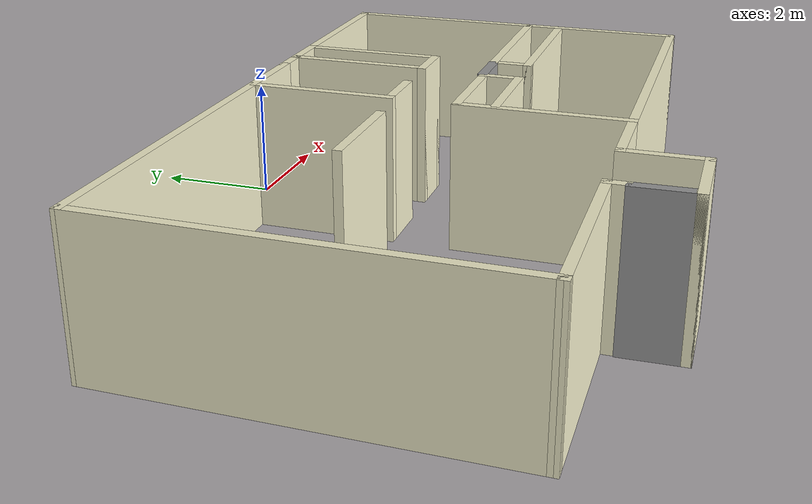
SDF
<?xml version='1.0'?>
<sdf version='1.6'>
  <model name='house'>
    <pose frame=''>-1.46609 -4.03759 0 0 -0 0</pose>
    <link name='Door_0'>
      <collision name='Door_0_Collision'>
        <geometry>
          <box>
            <size>0.9 0.17 2.5</size>
          </box>
        </geometry>
        <pose frame=''>0 0 1.25 0 -0 0</pose>
      </collision>
      <visual name='Door_0_Visual'>
        <pose frame=''>0 0 1.25 0 -0 0</pose>
        <geometry>
          <box>
            <size>0.9 0.17 2.5</size>
          </box>
        </geometry>
        <material>
          <script>
            <uri>file://media/materials/scripts/gazebo.material</uri>
            <name>Gazebo/Grey</name>
          </script>
        </material>
      </visual>
      <pose frame=''>-2.53496 -3.43764 0 0 -0 1.59446</pose>
    </link>
    <link name='Door_1'>
      <collision name='Door_1_Collision'>
        <geometry>
          <box>
            <size>0.85 0.17 2.5</size>
          </box>
        </geometry>
        <pose frame=''>0 0 1.25 0 -0 0</pose>
      </collision>
      <visual name='Door_1_Visual'>
        <pose frame=''>0 0 1.25 0 -0 0</pose>
        <geometry>
          <box>
            <size>0.85 0.17 2.5</size>
          </box>
        </geometry>
        <material>
          <script>
            <uri>file://media/materials/scripts/gazebo.material</uri>
            <name>Gazebo/Grey</name>
          </script>
        </material>
      </visual>
      <pose frame=''>2.18886 0.032322 0 0 -0 0</pose>
    </link>
    <link name='Wall_10'>
      <collision name='Wall_10_Collision'>
        <geometry>
          <box>
            <size>3.063 0.15 2.5</size>
          </box>
        </geometry>
        <pose frame=''>0 0 1.25 0 -0 0</pose>
      </collision>
      <visual name='Wall_10_Visual'>
        <pose frame=''>0 0 1.25 0 -0 0</pose>
        <geometry>
          <box>
            <size>3.063 0.15 2.5</size>
          </box>
        </geometry>
        <material>
          <script>
            <uri>file://media/materials/scripts/gazebo.material</uri>
            <name>Gazebo/Grey</name>
          </script>
          <ambient>0.956863 0.941176 0.8 1</ambient>
        </material>
        <meta>
          <layer>0</layer>
        </meta>
      </visual>
      <pose frame=''>-3.99041 -2.74041 0 0 -0 3.14159</pose>
    </link>
    <link name='Wall_12'>
      <collision name='Wall_12_Collision'>
        <geometry>
          <box>
            <size>6.4 0.15 2.5</size>
          </box>
        </geometry>
        <pose frame=''>0 0 1.25 0 -0 0</pose>
      </collision>
      <visual name='Wall_12_Visual'>
        <pose frame=''>0 0 1.25 0 -0 0</pose>
        <geometry>
          <box>
            <size>6.4 0.15 2.5</size>
          </box>
        </geometry>
        <material>
          <script>
            <uri>file://media/materials/scripts/gazebo.material</uri>
            <name>Gazebo/Grey</name>
          </script>
          <ambient>0.956863 0.941176 0.8 1</ambient>
        </material>
        <meta>
          <layer>0</layer>
        </meta>
      </visual>
      <pose frame=''>-5.43941 0.384587 0 0 -0 1.5684</pose>
    </link>
    <link name='Wall_14'>
      <collision name='Wall_14_Collision'>
        <geometry>
          <box>
            <size>5.649 0.15 2.5</size>
          </box>
        </geometry>
        <pose frame=''>0 0 1.25 0 -0 0</pose>
      </collision>
      <visual name='Wall_14_Visual'>
        <pose frame=''>0 0 1.25 0 -0 0</pose>
        <geometry>
          <box>
            <size>5.649 0.15 2.5</size>
          </box>
        </geometry>
        <material>
          <script>
            <uri>file://media/materials/scripts/gazebo.material</uri>
            <name>Gazebo/Grey</name>
          </script>
          <ambient>0.956863 0.941176 0.8 1</ambient>
        </material>
        <meta>
          <layer>0</layer>
        </meta>
      </visual>
      <pose frame=''>-2.68241 3.50959 0 0 -0 0</pose>
    </link>
    <link name='Wall_18'>
      <collision name='Wall_18_Collision'>
        <geometry>
          <box>
            <size>2.53945 0.15 2.5</size>
          </box>
        </geometry>
        <pose frame=''>0 0 1.25 0 -0 0</pose>
      </collision>
      <visual name='Wall_18_Visual'>
        <pose frame=''>0 0 1.25 0 -0 0</pose>
        <geometry>
          <box>
            <size>2.53945 0.15 2.5</size>
          </box>
        </geometry>
        <material>
          <script>
            <uri>file://media/materials/scripts/gazebo.material</uri>
            <name>Gazebo/Grey</name>
          </script>
          <ambient>0.956863 0.941176 0.8 1</ambient>
        </material>
        <meta>
          <layer>0</layer>
        </meta>
      </visual>
      <pose frame=''>0.06709 2.31509 0 0 -0 -1.5708</pose>
    </link>
    <link name='Wall_2'>
      <collision name='Wall_2_Collision'>
        <geometry>
          <box>
            <size>1.397 0.15 2.5</size>
          </box>
        </geometry>
        <pose frame=''>0 0 1.25 0 -0 0</pose>
      </collision>
      <visual name='Wall_2_Visual'>
        <pose frame=''>0 0 1.25 0 -0 0</pose>
        <geometry>
          <box>
            <size>1.397 0.15 2.5</size>
          </box>
        </geometry>
        <material>
          <script>
            <uri>file://media/materials/scripts/gazebo.material</uri>
            <name>Gazebo/Grey</name>
          </script>
          <ambient>0.956863 0.941176 0.8 1</ambient>
        </material>
        <meta>
          <layer>0</layer>
        </meta>
      </visual>
      <pose frame=''>-1.91041 -3.96241 0 0 -0 0</pose>
    </link>
    <link name='Wall_22'>
      <collision name='Wall_22_Collision'>
        <geometry>
          <box>
            <size>2.896 0.15 2.5</size>
          </box>
        </geometry>
        <pose frame=''>0 0 1.25 0 -0 0</pose>
      </collision>
      <visual name='Wall_22_Visual'>
        <pose frame=''>0 0 1.25 0 -0 0</pose>
        <geometry>
          <box>
            <size>2.896 0.15 2.5</size>
          </box>
        </geometry>
        <material>
          <script>
            <uri>file://media/materials/scripts/gazebo.material</uri>
            <name>Gazebo/Grey</name>
          </script>
          <ambient>0.956863 0.941176 0.8 1</ambient>
        </material>
        <meta>
          <layer>0</layer>
        </meta>
      </visual>
      <pose frame=''>0.06709 -1.36741 0 0 -0 1.5708</pose>
    </link>
    <link name='Wall_24'>
      <collision name='Wall_24_Collision'>
        <geometry>
          <box>
            <size>1.86 0.15 2.5</size>
          </box>
        </geometry>
        <pose frame=''>0 0 1.25 0 -0 0</pose>
      </collision>
      <visual name='Wall_24_Visual'>
        <pose frame=''>0 0 1.25 0 -0 0</pose>
        <geometry>
          <box>
            <size>1.86 0.15 2.5</size>
          </box>
        </geometry>
        <material>
          <script>
            <uri>file://media/materials/scripts/gazebo.material</uri>
            <name>Gazebo/Grey</name>
          </script>
          <ambient>0.956863 0.941176 0.8 1</ambient>
        </material>
        <meta>
          <layer>0</layer>
        </meta>
      </visual>
      <pose frame=''>-1.58791 1.00459 0 0 -0 3.14159</pose>
    </link>
    <link name='Wall_26'>
      <collision name='Wall_26_Collision'>
        <geometry>
          <box>
            <size>1.43 0.15 2.5</size>
          </box>
        </geometry>
        <pose frame=''>0 0 1.25 0 -0 0</pose>
      </collision>
      <visual name='Wall_26_Visual'>
        <pose frame=''>0 0 1.25 0 -0 0</pose>
        <geometry>
          <box>
            <size>1.43 0.15 2.5</size>
          </box>
        </geometry>
        <material>
          <script>
            <uri>file://media/materials/scripts/gazebo.material</uri>
            <name>Gazebo/Grey</name>
          </script>
          <ambient>0.956863 0.941176 0.8 1</ambient>
        </material>
        <meta>
          <layer>0</layer>
        </meta>
      </visual>
      <pose frame=''>0.70709 3.50959 0 0 -0 0</pose>
    </link>
    <link name='Wall_29'>
      <collision name='Wall_29_Collision'>
        <geometry>
          <box>
            <size>1.828 0.15 2.5</size>
          </box>
        </geometry>
        <pose frame=''>0 0 1.25 0 -0 0</pose>
      </collision>
      <visual name='Wall_29_Visual'>
        <pose frame=''>0 0 1.25 0 -0 0</pose>
        <geometry>
          <box>
            <size>1.828 0.15 2.5</size>
          </box>
        </geometry>
        <material>
          <script>
            <uri>file://media/materials/scripts/gazebo.material</uri>
            <name>Gazebo/Grey</name>
          </script>
          <ambient>0.956863 0.941176 0.8 1</ambient>
        </material>
        <meta>
          <layer>0</layer>
        </meta>
      </visual>
      <pose frame=''>0.90609 0.005587 0 0 -0 0</pose>
    </link>
    <link name='Wall_39'>
      <collision name='Wall_39_Collision'>
        <geometry>
          <box>
            <size>2.997 0.15 2.5</size>
          </box>
        </geometry>
        <pose frame=''>0 0 1.25 0 -0 0</pose>
      </collision>
      <visual name='Wall_39_Visual'>
        <pose frame=''>0 0 1.25 0 -0 0</pose>
        <geometry>
          <box>
            <size>2.997 0.15 2.5</size>
          </box>
        </geometry>
        <material>
          <script>
            <uri>file://media/materials/scripts/gazebo.material</uri>
            <name>Gazebo/Grey</name>
          </script>
          <ambient>0.956863 0.941176 0.8 1</ambient>
        </material>
        <meta>
          <layer>0</layer>
        </meta>
      </visual>
      <pose frame=''>4.02059 0.034587 0 0 -0 3.14159</pose>
    </link>
    <link name='Wall_4'>
      <collision name='Wall_4_Collision'>
        <geometry>
          <box>
            <size>1.37235 0.15 2.5</size>
          </box>
        </geometry>
        <pose frame=''>0 0 1.25 0 -0 0</pose>
      </collision>
      <visual name='Wall_4_Visual'>
        <pose frame=''>0 0 1.25 0 -0 0</pose>
        <geometry>
          <box>
            <size>1.37235 0.15 2.5</size>
          </box>
        </geometry>
        <material>
          <script>
            <uri>file://media/materials/scripts/gazebo.material</uri>
            <name>Gazebo/Grey</name>
          </script>
          <ambient>0.956863 0.941176 0.8 1</ambient>
        </material>
        <meta>
          <layer>0</layer>
        </meta>
      </visual>
      <pose frame=''>-1.28691 -3.35141 0 0 -0 1.5708</pose>
    </link>
    <link name='Wall_6'>
      <collision name='Wall_6_Collision'>
        <geometry>
          <box>
            <size>1.504 0.15 2.5</size>
          </box>
        </geometry>
        <pose frame=''>0 0 1.25 0 -0 0</pose>
      </collision>
      <visual name='Wall_6_Visual'>
        <pose frame=''>0 0 1.25 0 -0 0</pose>
        <geometry>
          <box>
            <size>1.504 0.15 2.5</size>
          </box>
        </geometry>
        <material>
          <script>
            <uri>file://media/materials/scripts/gazebo.material</uri>
            <name>Gazebo/Grey</name>
          </script>
          <ambient>0.956863 0.941176 0.8 1</ambient>
        </material>
        <meta>
          <layer>0</layer>
        </meta>
      </visual>
      <pose frame=''>-0.60991 -2.74041 0 0 -0 0</pose>
    </link>
    <link name='Wall_64'>
      <collision name='Wall_64_Collision'>
        <geometry>
          <box>
            <size>1.041 0.15 2.5</size>
          </box>
        </geometry>
        <pose frame=''>0 0 1.25 0 -0 0</pose>
      </collision>
      <visual name='Wall_64_Visual'>
        <pose frame=''>0 0 1.25 0 -0 0</pose>
        <geometry>
          <box>
            <size>1.041 0.15 2.5</size>
          </box>
        </geometry>
        <material>
          <script>
            <uri>file://media/materials/scripts/gazebo.material</uri>
            <name>Gazebo/Grey</name>
          </script>
          <ambient>0.956863 0.941176 0.8 1</ambient>
        </material>
        <meta>
          <layer>0</layer>
        </meta>
      </visual>
      <pose frame=''>0.51259 1.12059 0 0 -0 0</pose>
    </link>
    <link name='Wall_66'>
      <collision name='Wall_66_Collision'>
        <geometry>
          <box>
            <size>0.88 0.15 2.5</size>
          </box>
        </geometry>
        <pose frame=''>0 0 1.25 0 -0 0</pose>
      </collision>
      <visual name='Wall_66_Visual'>
        <pose frame=''>0 0 1.25 0 -0 0</pose>
        <geometry>
          <box>
            <size>0.88 0.15 2.5</size>
          </box>
        </geometry>
        <material>
          <script>
            <uri>file://media/materials/scripts/gazebo.material</uri>
            <name>Gazebo/Grey</name>
          </script>
          <ambient>0.956863 0.941176 0.8 1</ambient>
        </material>
        <meta>
          <layer>0</layer>
        </meta>
      </visual>
      <pose frame=''>2.23209 1.12859 0 0 -0 0</pose>
    </link>
    <link name='Wall_68'>
      <collision name='Wall_68_Collision'>
        <geometry>
          <box>
            <size>2.531 0.15 2.5</size>
          </box>
        </geometry>
        <pose frame=''>0 0 1.25 0 -0 0</pose>
      </collision>
      <visual name='Wall_68_Visual'>
        <pose frame=''>0 0 1.25 0 -0 0</pose>
        <geometry>
          <box>
            <size>2.531 0.15 2.5</size>
          </box>
        </geometry>
        <material>
          <script>
            <uri>file://media/materials/scripts/gazebo.material</uri>
            <name>Gazebo/Grey</name>
          </script>
          <ambient>0.956863 0.941176 0.8 1</ambient>
        </material>
        <meta>
          <layer>0</layer>
        </meta>
      </visual>
      <pose frame=''>1.86709 2.31909 0 0 -0 1.5708</pose>
    </link>
    <link name='Wall_70'>
      <collision name='Wall_70_Collision'>
        <geometry>
          <box>
            <size>0.67 0.15 2.5</size>
          </box>
        </geometry>
        <pose frame=''>0 0 1.25 0 -0 0</pose>
      </collision>
      <visual name='Wall_70_Visual'>
        <pose frame=''>0 0 1.25 0 -0 0</pose>
        <geometry>
          <box>
            <size>0.67 0.15 2.5</size>
          </box>
        </geometry>
        <material>
          <script>
            <uri>file://media/materials/scripts/gazebo.material</uri>
            <name>Gazebo/Grey</name>
          </script>
          <ambient>0.956863 0.941176 0.8 1</ambient>
        </material>
        <meta>
          <layer>0</layer>
        </meta>
      </visual>
      <pose frame=''>1.60709 3.50959 0 0 -0 0</pose>
    </link>
    <link name='Wall_72'>
      <collision name='Wall_72_Collision'>
        <geometry>
          <box>
            <size>2.531 0.15 2.5</size>
          </box>
        </geometry>
        <pose frame=''>0 0 1.25 0 -0 0</pose>
      </collision>
      <visual name='Wall_72_Visual'>
        <pose frame=''>0 0 1.25 0 -0 0</pose>
        <geometry>
          <box>
            <size>2.531 0.15 2.5</size>
          </box>
        </geometry>
        <material>
          <script>
            <uri>file://media/materials/scripts/gazebo.material</uri>
            <name>Gazebo/Grey</name>
          </script>
          <ambient>0.956863 0.941176 0.8 1</ambient>
        </material>
        <meta>
          <layer>0</layer>
        </meta>
      </visual>
      <pose frame=''>2.59709 2.31909 0 0 -0 1.5708</pose>
    </link>
    <link name='Wall_75'>
      <collision name='Wall_75_Collision'>
        <geometry>
          <box>
            <size>2.997 0.15 2.5</size>
          </box>
        </geometry>
        <pose frame=''>0 0 1.25 0 -0 0</pose>
      </collision>
      <visual name='Wall_75_Visual'>
        <pose frame=''>0 0 1.25 0 -0 0</pose>
        <geometry>
          <box>
            <size>2.997 0.15 2.5</size>
          </box>
        </geometry>
        <material>
          <script>
            <uri>file://media/materials/scripts/gazebo.material</uri>
            <name>Gazebo/Grey</name>
          </script>
          <ambient>0.956863 0.941176 0.8 1</ambient>
        </material>
        <meta>
          <layer>0</layer>
        </meta>
      </visual>
      <pose frame=''>4.02059 3.50959 0 0 -0 0</pose>
    </link>
    <link name='Wall_77'>
      <collision name='Wall_77_Collision'>
        <geometry>
          <box>
            <size>3.625 0.15 2.5</size>
          </box>
        </geometry>
        <pose frame=''>0 0 1.25 0 -0 0</pose>
      </collision>
      <visual name='Wall_77_Visual'>
        <pose frame=''>0 0 1.25 0 -0 0</pose>
        <geometry>
          <box>
            <size>3.625 0.15 2.5</size>
          </box>
        </geometry>
        <material>
          <script>
            <uri>file://media/materials/scripts/gazebo.material</uri>
            <name>Gazebo/Grey</name>
          </script>
          <ambient>0.956863 0.941176 0.8 1</ambient>
        </material>
        <meta>
          <layer>0</layer>
        </meta>
      </visual>
      <pose frame=''>5.44409 1.77209 0 0 -0 -1.5708</pose>
    </link>
    <link name='Wall_79'>
      <collision name='Wall_79_Collision'>
        <geometry>
          <box>
            <size>2.925 0.15 2.5</size>
          </box>
        </geometry>
        <pose frame=''>0 0 1.25 0 -0 0</pose>
      </collision>
      <visual name='Wall_79_Visual'>
        <pose frame=''>0 0 1.25 0 -0 0</pose>
        <geometry>
          <box>
            <size>2.925 0.15 2.5</size>
          </box>
        </geometry>
        <material>
          <script>
            <uri>file://media/materials/scripts/gazebo.material</uri>
            <name>Gazebo/Grey</name>
          </script>
          <ambient>0.956863 0.941176 0.8 1</ambient>
        </material>
        <meta>
          <layer>0</layer>
        </meta>
      </visual>
      <pose frame=''>5.44409 -1.35291 0 0 -0 -1.5708</pose>
    </link>
    <link name='Wall_81'>
      <collision name='Wall_81_Collision'>
        <geometry>
          <box>
            <size>5.527 0.15 2.5</size>
          </box>
        </geometry>
        <pose frame=''>0 0 1.25 0 -0 0</pose>
      </collision>
      <visual name='Wall_81_Visual'>
        <pose frame=''>0 0 1.25 0 -0 0</pose>
        <geometry>
          <box>
            <size>5.527 0.15 2.5</size>
          </box>
        </geometry>
        <material>
          <script>
            <uri>file://media/materials/scripts/gazebo.material</uri>
            <name>Gazebo/Grey</name>
          </script>
          <ambient>0.956863 0.941176 0.8 1</ambient>
        </material>
        <meta>
          <layer>0</layer>
        </meta>
      </visual>
      <pose frame=''>2.75559 -2.74041 0 0 -0 0</pose>
    </link>
    <link name='Wall_83'>
      <collision name='Wall_83_Collision'>
        <geometry>
          <box>
            <size>0.88 0.15 2.5</size>
          </box>
        </geometry>
        <pose frame=''>0 0 1.25 0 -0 0</pose>
      </collision>
      <visual name='Wall_83_Visual'>
        <pose frame=''>0 0 1.25 0 -0 0</pose>
        <geometry>
          <box>
            <size>0.88 0.15 2.5</size>
          </box>
        </geometry>
        <material>
          <script>
            <uri>file://media/materials/scripts/gazebo.material</uri>
            <name>Gazebo/Grey</name>
          </script>
          <ambient>0.956863 0.941176 0.8 1</ambient>
        </material>
        <meta>
          <layer>0</layer>
        </meta>
      </visual>
      <pose frame=''>2.23209 3.50959 0 0 -0 0</pose>
    </link>
    <link name='Wall_85'>
      <collision name='Wall_85_Collision'>
        <geometry>
          <box>
            <size>0.762 0.15 2.5</size>
          </box>
        </geometry>
        <pose frame=''>0 0 1.25 0 -0 0</pose>
      </collision>
      <visual name='Wall_85_Visual'>
        <pose frame=''>0 0 1.25 0 -0 0</pose>
        <geometry>
          <box>
            <size>0.762 0.15 2.5</size>
          </box>
        </geometry>
        <material>
          <script>
            <uri>file://media/materials/scripts/gazebo.material</uri>
            <name>Gazebo/Grey</name>
          </script>
          <ambient>0.956863 0.941176 0.8 1</ambient>
        </material>
        <meta>
          <layer>0</layer>
        </meta>
      </visual>
      <pose frame=''>1.74509 -0.300413 0 0 -0 -1.5708</pose>
    </link>
    <link name='Wall_87'>
      <collision name='Wall_87_Collision'>
        <geometry>
          <box>
            <size>1.75 0.15 2.5</size>
          </box>
        </geometry>
        <pose frame=''>0 0 1.25 0 -0 0</pose>
      </collision>
      <visual name='Wall_87_Visual'>
        <pose frame=''>0 0 1.25 0 -0 0</pose>
        <geometry>
          <box>
            <size>1.75 0.15 2.5</size>
          </box>
        </geometry>
        <material>
          <script>
            <uri>file://media/materials/scripts/gazebo.material</uri>
            <name>Gazebo/Grey</name>
          </script>
          <ambient>0.956863 0.941176 0.8 1</ambient>
        </material>
        <meta>
          <layer>0</layer>
        </meta>
      </visual>
      <pose frame=''>0.94509 -0.606413 0 0 -0 3.14159</pose>
    </link>
    <link name='Wall_89'>
      <collision name='Wall_89_Collision'>
        <geometry>
          <box>
            <size>0.762 0.15 2.5</size>
          </box>
        </geometry>
        <pose frame=''>0 0 1.25 0 -0 0</pose>
      </collision>
      <visual name='Wall_89_Visual'>
        <pose frame=''>0 0 1.25 0 -0 0</pose>
        <geometry>
          <box>
            <size>0.762 0.15 2.5</size>
          </box>
        </geometry>
        <material>
          <script>
            <uri>file://media/materials/scripts/gazebo.material</uri>
            <name>Gazebo/Grey</name>
          </script>
          <ambient>0.956863 0.941176 0.8 1</ambient>
        </material>
        <meta>
          <layer>0</layer>
        </meta>
      </visual>
      <pose frame=''>2.59709 -0.271413 0 0 -0 -1.5708</pose>
    </link>
    <link name='Wall_91'>
      <collision name='Wall_91_Collision'>
        <geometry>
          <box>
            <size>3 0.15 2.5</size>
          </box>
        </geometry>
        <pose frame=''>0 0 1.25 0 -0 0</pose>
      </collision>
      <visual name='Wall_91_Visual'>
        <pose frame=''>0 0 1.25 0 -0 0</pose>
        <geometry>
          <box>
            <size>3 0.15 2.5</size>
          </box>
        </geometry>
        <material>
          <script>
            <uri>file://media/materials/scripts/gazebo.material</uri>
            <name>Gazebo/Grey</name>
          </script>
          <ambient>0.956863 0.941176 0.8 1</ambient>
        </material>
        <meta>
          <layer>0</layer>
        </meta>
      </visual>
      <pose frame=''>4.02209 -0.577413 0 0 -0 0</pose>
    </link>
    <link name='Wall_93'>
      <collision name='Wall_93_Collision'>
        <geometry>
          <box>
            <size>0.16 0.15 2.5</size>
          </box>
        </geometry>
        <pose frame=''>0 0 1.25 0 -0 0</pose>
      </collision>
      <visual name='Wall_93_Visual'>
        <pose frame=''>0 0 1.25 0 -0 0</pose>
        <geometry>
          <box>
            <size>0.16 0.15 2.5</size>
          </box>
        </geometry>
        <material>
          <script>
            <uri>file://media/materials/scripts/gazebo.material</uri>
            <name>Gazebo/Grey</name>
          </script>
          <ambient>0.956863 0.941176 0.8 1</ambient>
        </material>
        <meta>
          <layer>0</layer>
        </meta>
      </visual>
      <pose frame=''>-2.53391 -3.95741 0 0 -0 1.5708</pose>
    </link>
    <link name='Wall_95'>
      <collision name='Wall_95_Collision'>
        <geometry>
          <box>
            <size>0.409839 0.15 2.5</size>
          </box>
        </geometry>
        <pose frame=''>0 0 1.25 0 -0 0</pose>
      </collision>
      <visual name='Wall_95_Visual'>
        <pose frame=''>0 0 1.25 0 -0 0</pose>
        <geometry>
          <box>
            <size>0.409839 0.15 2.5</size>
          </box>
        </geometry>
        <material>
          <script>
            <uri>file://media/materials/scripts/gazebo.material</uri>
            <name>Gazebo/Grey</name>
          </script>
          <ambient>0.956863 0.941176 0.8 1</ambient>
        </material>
        <meta>
          <layer>0</layer>
        </meta>
      </visual>
      <pose frame=''>-2.53444 -2.87033 0 0 -0 1.56675</pose>
    </link>
    <static>1</static>
  </model>
</sdf>
